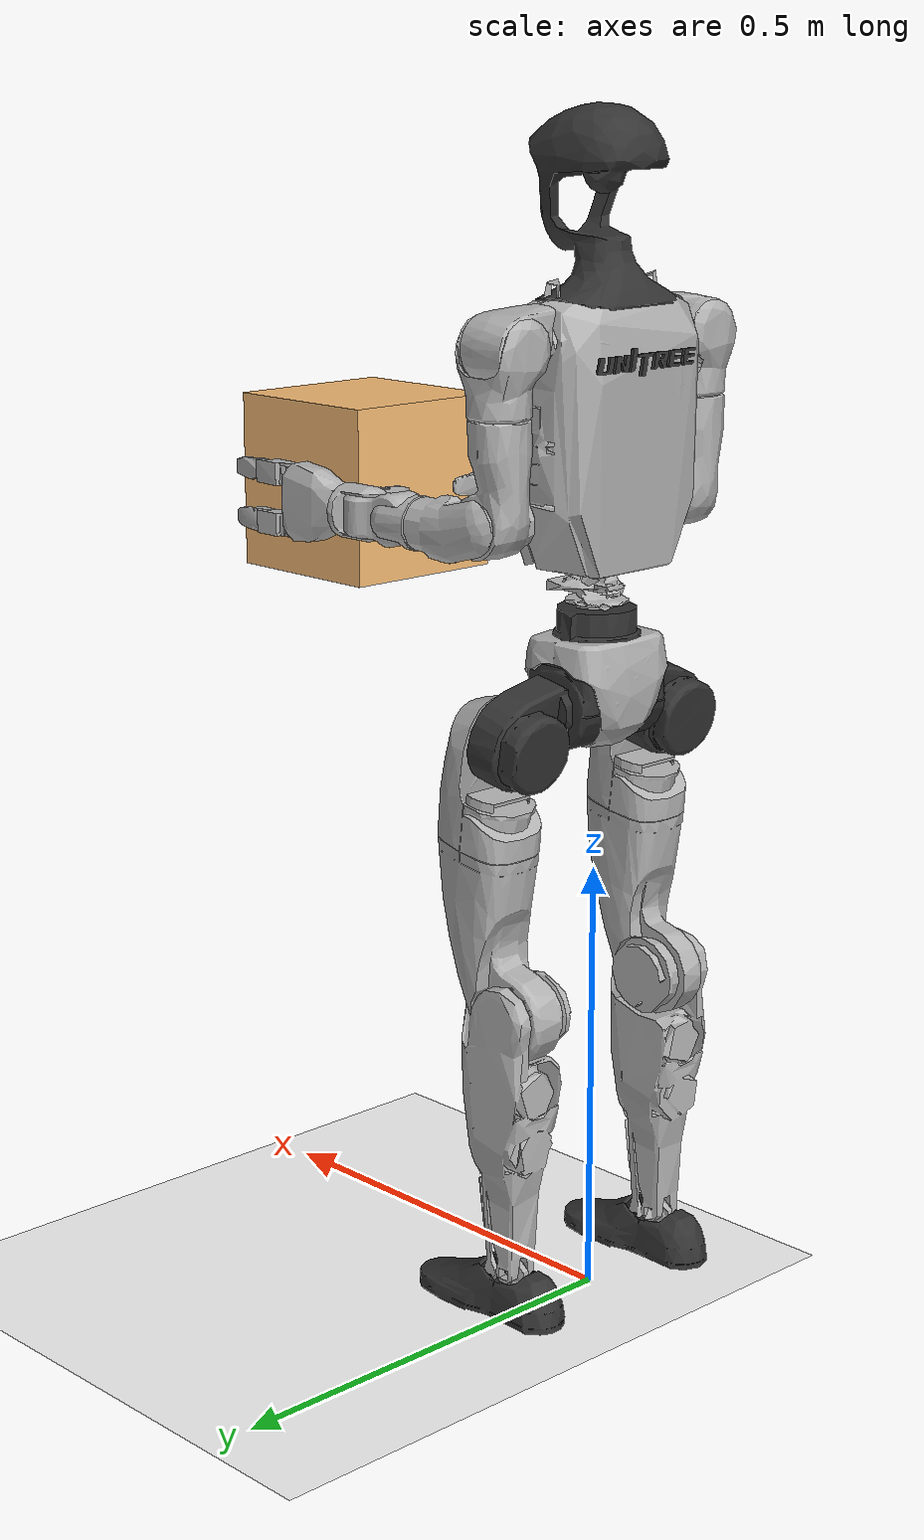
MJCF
<mujoco model="g1_29dof_with_hands_scene">
   <compiler angle="radian" meshdir="meshes"/>

  <option integrator="implicitfast"/>

  <default>
    <default class="g1">
      <site rgba="1 0 0 1" size="0.01" group="5"/>
      <joint armature="0.01" frictionloss="0.3"/>
      <position kp="500" dampratio="1" inheritrange="1"/>
      <default class="visual">
        <geom group="2" type="mesh" contype="0" conaffinity="0" density="0" material="metal"/>
      </default>
      <default class="collision">
        <geom group="3" type="mesh"/>
        <default class="foot">
          <geom type="sphere" size="0.005" priority="1" friction="0.6" condim="3"/>
        </default>
      </default>
    </default>
  </default>

  <asset>
    <material name="black" rgba="0.2 0.2 0.2 1"/>
    <material name="metal" rgba="0.7 0.7 0.7 1"/>

    <mesh file="pelvis.STL"/>
    <mesh file="pelvis_contour_link.STL"/>
    <mesh file="left_hip_pitch_link.STL"/>
    <mesh file="left_hip_roll_link.STL"/>
    <mesh file="left_hip_yaw_link.STL"/>
    <mesh file="left_knee_link.STL"/>
    <mesh file="left_ankle_pitch_link.STL"/>
    <mesh file="left_ankle_roll_link.STL"/>
    <mesh file="right_hip_pitch_link.STL"/>
    <mesh file="right_hip_roll_link.STL"/>
    <mesh file="right_hip_yaw_link.STL"/>
    <mesh file="right_knee_link.STL"/>
    <mesh file="right_ankle_pitch_link.STL"/>
    <mesh file="right_ankle_roll_link.STL"/>
    <mesh name="waist_yaw_link" file="waist_yaw_link_rev_1_0.STL"/>
    <mesh name="waist_roll_link" file="waist_roll_link_rev_1_0.STL"/>
    <mesh name="torso_link" file="torso_link_rev_1_0.STL"/>
    <mesh file="logo_link.STL"/>
    <mesh file="head_link.STL"/>
    <mesh file="left_shoulder_pitch_link.STL"/>
    <mesh file="left_shoulder_roll_link.STL"/>
    <mesh file="left_shoulder_yaw_link.STL"/>
    <mesh file="left_elbow_link.STL"/>
    <mesh file="left_wrist_roll_link.STL"/>
    <mesh name="left_wrist_pitch_link" file="left_wrist_pitch_link.STL"/>
    <mesh file="left_wrist_yaw_link.STL"/>
    <mesh file="left_hand_palm_link.STL"/>
    <mesh file="left_hand_thumb_0_link.STL"/>
    <mesh file="left_hand_thumb_1_link.STL"/>
    <mesh file="left_hand_thumb_2_link.STL"/>
    <mesh file="left_hand_middle_0_link.STL"/>
    <mesh file="left_hand_middle_1_link.STL"/>
    <mesh file="left_hand_index_0_link.STL"/>
    <mesh file="left_hand_index_1_link.STL"/>
    <mesh file="right_shoulder_pitch_link.STL"/>
    <mesh file="right_shoulder_roll_link.STL"/>
    <mesh file="right_shoulder_yaw_link.STL"/>
    <mesh file="right_elbow_link.STL"/>
    <mesh file="right_wrist_roll_link.STL"/>
    <mesh file="right_wrist_pitch_link.STL"/>
    <mesh file="right_wrist_yaw_link.STL"/>
    <mesh file="right_hand_palm_link.STL"/>
    <mesh file="right_hand_thumb_0_link.STL"/>
    <mesh file="right_hand_thumb_1_link.STL"/>
    <mesh file="right_hand_thumb_2_link.STL"/>
    <mesh file="right_hand_middle_0_link.STL"/>
    <mesh file="right_hand_middle_1_link.STL"/>
    <mesh file="right_hand_index_0_link.STL"/>
    <mesh file="right_hand_index_1_link.STL"/>
  </asset>

  <worldbody>
    <body name="pelvis" pos="0 0 0.793" childclass="g1">
      <inertial pos="0 0 -0.07605" quat="1 0 -0.000399148 0" mass="3.813" diaginertia="0.010549 0.0093089 0.0079184"/>
      <freejoint name="floating_base_joint"/>
      <geom class="visual" material="black" mesh="pelvis"/>
      <geom class="visual" mesh="pelvis_contour_link"/>
      <geom class="collision" mesh="pelvis_contour_link"/>
      <site name="imu_in_pelvis" size="0.01" pos="0.04525 0 -0.08339"/>
      <body name="left_hip_pitch_link" pos="0 0.064452 -0.1027">
        <inertial pos="0.002741 0.047791 -0.02606" quat="0.954862 0.293964 0.0302556 0.030122" mass="1.35"
          diaginertia="0.00181517 0.00153422 0.00116212"/>
        <joint name="left_hip_pitch_joint" axis="0 1 0" range="-2.5307 2.8798" actuatorfrcrange="-88 88"/>
        <geom class="visual" material="black" mesh="left_hip_pitch_link"/>
        <geom class="collision" mesh="left_hip_pitch_link"/>
        <body name="left_hip_roll_link" pos="0 0.052 -0.030465" quat="0.996179 0 -0.0873386 0">
          <inertial pos="0.029812 -0.001045 -0.087934" quat="0.977808 -1.97119e-05 0.205576 -0.0403793" mass="1.52"
            diaginertia="0.00254986 0.00241169 0.00148755"/>
          <joint name="left_hip_roll_joint" axis="1 0 0" range="-0.5236 2.9671" actuatorfrcrange="-139 139"/>
          <geom class="visual" mesh="left_hip_roll_link"/>
          <geom class="collision" mesh="left_hip_roll_link"/>
          <body name="left_hip_yaw_link" pos="0.025001 0 -0.12412">
            <inertial pos="-0.057709 -0.010981 -0.15078" quat="0.600598 0.15832 0.223482 0.751181" mass="1.702"
              diaginertia="0.00776166 0.00717575 0.00160139"/>
            <joint name="left_hip_yaw_joint" axis="0 0 1" range="-2.7576 2.7576" actuatorfrcrange="-88 88"/>
            <geom class="visual" mesh="left_hip_yaw_link"/>
            <geom class="collision" mesh="left_hip_yaw_link"/>
            <body name="left_knee_link" pos="-0.078273 0.0021489 -0.17734" quat="0.996179 0 0.0873386 0">
              <inertial pos="0.005457 0.003964 -0.12074" quat="0.923418 -0.0327699 0.0158246 0.382067" mass="1.932"
                diaginertia="0.0113804 0.0112778 0.00146458"/>
              <joint name="left_knee_joint" axis="0 1 0" range="-0.087267 2.8798" actuatorfrcrange="-139 139"/>
              <geom class="visual" mesh="left_knee_link"/>
              <geom class="collision" mesh="left_knee_link"/>
              <body name="left_ankle_pitch_link" pos="0 -9.4445e-05 -0.30001">
                <inertial pos="-0.007269 0 0.011137" quat="0.603053 0.369225 0.369225 0.603053" mass="0.074"
                  diaginertia="1.89e-05 1.40805e-05 6.9195e-06"/>
                <joint name="left_ankle_pitch_joint" axis="0 1 0" range="-0.87267 0.5236" actuatorfrcrange="-50 50"/>
                <geom class="visual" mesh="left_ankle_pitch_link"/>
                <geom class="collision" mesh="left_ankle_pitch_link"/>
                <body name="left_ankle_roll_link" pos="0 0 -0.017558">
                  <inertial pos="0.026505 0 -0.016425" quat="-0.000481092 0.728482 -0.000618967 0.685065" mass="0.608"
                    diaginertia="0.00167218 0.0016161 0.000217621"/>
                  <joint name="left_ankle_roll_joint" axis="1 0 0" range="-0.2618 0.2618" actuatorfrcrange="-50 50"/>
                  <geom class="visual" material="black" mesh="left_ankle_roll_link"/>
                  <geom class="foot" pos="-0.05 0.025 -0.03"/>
                  <geom class="foot" pos="-0.05 -0.025 -0.03"/>
                  <geom class="foot" pos="0.12 0.03 -0.03"/>
                  <geom class="foot" pos="0.12 -0.03 -0.03"/>
                  <site name="left_foot"/>
                  <body name="left_toe_link" pos="0.1 0 -0.02"/>
                </body>
              </body>
            </body>
          </body>
        </body>
      </body>
      <body name="right_hip_pitch_link" pos="0 -0.064452 -0.1027">
        <inertial pos="0.002741 -0.047791 -0.02606" quat="0.954862 -0.293964 0.0302556 -0.030122" mass="1.35"
          diaginertia="0.00181517 0.00153422 0.00116212"/>
        <joint name="right_hip_pitch_joint" axis="0 1 0" range="-2.5307 2.8798" actuatorfrcrange="-88 88"/>
        <geom class="visual" material="black" mesh="right_hip_pitch_link"/>
        <geom class="collision" mesh="right_hip_pitch_link"/>
        <body name="right_hip_roll_link" pos="0 -0.052 -0.030465" quat="0.996179 0 -0.0873386 0">
          <inertial pos="0.029812 0.001045 -0.087934" quat="0.977808 1.97119e-05 0.205576 0.0403793" mass="1.52"
            diaginertia="0.00254986 0.00241169 0.00148755"/>
          <joint name="right_hip_roll_joint" axis="1 0 0" range="-2.9671 0.5236" actuatorfrcrange="-139 139"/>
          <geom class="visual" mesh="right_hip_roll_link"/>
          <geom class="collision" mesh="right_hip_roll_link"/>
          <body name="right_hip_yaw_link" pos="0.025001 0 -0.12412">
            <inertial pos="-0.057709 0.010981 -0.15078" quat="0.751181 0.223482 0.15832 0.600598" mass="1.702"
              diaginertia="0.00776166 0.00717575 0.00160139"/>
            <joint name="right_hip_yaw_joint" axis="0 0 1" range="-2.7576 2.7576" actuatorfrcrange="-88 88"/>
            <geom class="visual" mesh="right_hip_yaw_link"/>
            <geom class="collision" mesh="right_hip_yaw_link"/>
            <body name="right_knee_link" pos="-0.078273 -0.0021489 -0.17734" quat="0.996179 0 0.0873386 0">
              <inertial pos="0.005457 -0.003964 -0.12074" quat="0.923439 0.0345276 0.0116333 -0.382012" mass="1.932"
                diaginertia="0.011374 0.0112843 0.00146452"/>
              <joint name="right_knee_joint" axis="0 1 0" range="-0.087267 2.8798" actuatorfrcrange="-139 139"/>
              <geom class="visual" mesh="right_knee_link"/>
              <geom class="collision" mesh="right_knee_link"/>
              <body name="right_ankle_pitch_link" pos="0 9.4445e-05 -0.30001">
                <inertial pos="-0.007269 0 0.011137" quat="0.603053 0.369225 0.369225 0.603053" mass="0.074"
                  diaginertia="1.89e-05 1.40805e-05 6.9195e-06"/>
                <joint name="right_ankle_pitch_joint" axis="0 1 0" range="-0.87267 0.5236" actuatorfrcrange="-50 50"/>
                <geom class="visual" mesh="right_ankle_pitch_link"/>
                <geom class="collision" mesh="right_ankle_pitch_link"/>
                <body name="right_ankle_roll_link" pos="0 0 -0.017558">
                  <inertial pos="0.026505 0 -0.016425" quat="0.000481092 0.728482 0.000618967 0.685065" mass="0.608"
                    diaginertia="0.00167218 0.0016161 0.000217621"/>
                  <joint name="right_ankle_roll_joint" axis="1 0 0" range="-0.2618 0.2618" actuatorfrcrange="-50 50"/>
                  <geom class="visual" material="black" mesh="right_ankle_roll_link"/>
                  <geom class="foot" pos="-0.05 0.025 -0.03"/>
                  <geom class="foot" pos="-0.05 -0.025 -0.03"/>
                  <geom class="foot" pos="0.12 0.03 -0.03"/>
                  <geom class="foot" pos="0.12 -0.03 -0.03"/>
                  <site name="right_foot"/>
                  <body name="right_toe_link" pos="0.1 0 -0.02"/>
                </body>
              </body>
            </body>
          </body>
        </body>
      </body>
      <body name="waist_yaw_link">
        <inertial pos="0.003494 0.000233 0.018034" quat="0.289697 0.591001 -0.337795 0.672821" mass="0.214"
          diaginertia="0.000163531 0.000107714 0.000102205"/>
        <joint name="waist_yaw_joint" axis="0 0 1" range="-2.618 2.618" actuatorfrcrange="-88 88"/>
        <geom class="visual" mesh="waist_yaw_link"/>
        <body name="waist_roll_link" pos="-0.0039635 0 0.044">
          <inertial pos="0 2.3e-05 0" quat="0.5 0.5 -0.5 0.5" mass="0.086" diaginertia="8.245e-06 7.079e-06 6.339e-06"/>
          <joint name="waist_roll_joint" axis="1 0 0" range="-0.52 0.52" actuatorfrcrange="-50 50"/>
          <geom class="visual" mesh="waist_roll_link"/>
          <body name="torso_link">
            <inertial pos="0.00203158 0.000339683 0.184568" quat="0.999803 -6.03319e-05 0.0198256 0.00131986"
              mass="7.818" diaginertia="0.121847 0.109825 0.0273735"/>
            <joint name="waist_pitch_joint" axis="0 1 0" range="-0.52 0.52" actuatorfrcrange="-50 50"/>
            <geom class="visual" mesh="torso_link"/>
            <geom class="collision" mesh="torso_link"/>
            <geom pos="0.0039635 0 -0.044" quat="1 0 0 0" class="visual" material="black" mesh="logo_link"/>
            <geom pos="0.0039635 0 -0.044" class="visual" material="black" mesh="head_link"/>
            <geom pos="0.0039635 0 -0.044" class="collision" mesh="head_link"/>
            <site name="imu_in_torso" size="0.01" pos="-0.03959 -0.00224 0.14792"/>
            <body name="left_shoulder_pitch_link" pos="0.0039563 0.10022 0.24778"
              quat="0.990264 0.139201 1.38722e-05 -9.86868e-05">
              <inertial pos="0 0.035892 -0.011628" quat="0.654152 0.0130458 -0.326267 0.68225" mass="0.718"
                diaginertia="0.000465864 0.000432842 0.000406394"/>
              <joint name="left_shoulder_pitch_joint" axis="0 1 0" range="-3.0892 2.6704" actuatorfrcrange="-25 25"/>
              <geom class="visual" mesh="left_shoulder_pitch_link"/>
              <geom size="0.03 0.025" pos="0 0.04 -0.01" quat="0.707107 0 0.707107 0" type="cylinder" class="collision"/>
              <body name="left_shoulder_roll_link" pos="0 0.038 -0.013831" quat="0.990268 -0.139172 0 0">
                <inertial pos="-0.000227 0.00727 -0.063243" quat="0.701256 -0.0196223 -0.00710317 0.712604" mass="0.643"
                  diaginertia="0.000691311 0.000618011 0.000388977"/>
                <joint name="left_shoulder_roll_joint" axis="1 0 0" range="-1.5882 2.2515" actuatorfrcrange="-25 25"/>
                <geom class="visual" mesh="left_shoulder_roll_link"/>
                <geom size="0.03 0.015" pos="-0.004 0.006 -0.053" type="cylinder" class="collision"/>
                <body name="left_shoulder_yaw_link" pos="0 0.00624 -0.1032">
                  <inertial pos="0.010773 -0.002949 -0.072009" quat="0.716879 -0.0964829 -0.0679942 0.687134"
                    mass="0.734" diaginertia="0.00106187 0.00103217 0.000400661"/>
                  <joint name="left_shoulder_yaw_joint" axis="0 0 1" range="-2.618 2.618" actuatorfrcrange="-25 25"/>
                  <geom class="visual" mesh="left_shoulder_yaw_link"/>
                  <geom class="collision" mesh="left_shoulder_yaw_link"/>
                  <body name="left_elbow_link" pos="0.015783 0 -0.080518">
                    <inertial pos="0.064956 0.004454 -0.010062" quat="0.541765 0.636132 0.388821 0.388129" mass="0.6"
                      diaginertia="0.000443035 0.000421612 0.000259353"/>
                    <joint name="left_elbow_joint" axis="0 1 0" range="-1.0472 2.0944" actuatorfrcrange="-25 25"/>
                    <geom class="visual" mesh="left_elbow_link"/>
                    <geom class="collision" mesh="left_elbow_link"/>
                    <body name="left_wrist_roll_link" pos="0.1 0.00188791 -0.01">
                      <inertial pos="0.0171394 0.000537591 4.8864e-07" quat="0.575338 0.411667 -0.574906 0.411094"
                        mass="0.085445" diaginertia="5.48211e-05 4.96646e-05 3.57798e-05"/>
                      <joint name="left_wrist_roll_joint" axis="1 0 0" range="-1.97222 1.97222"
                        actuatorfrcrange="-25 25"/>
                      <geom class="visual" mesh="left_wrist_roll_link"/>
                      <geom class="collision" mesh="left_wrist_roll_link"/>
                      <body name="left_wrist_pitch_link" pos="0.038 0 0">
                        <inertial pos="0.0229999 -0.00111685 -0.00111658" quat="0.249998 0.661363 0.293036 0.643608"
                          mass="0.48405" diaginertia="0.000430353 0.000429873 0.000164648"/>
                        <joint name="left_wrist_pitch_joint" axis="0 1 0" range="-1.61443 1.61443"
                          actuatorfrcrange="-5 5"/>
                        <geom class="visual" mesh="left_wrist_pitch_link"/>
                        <geom class="collision" mesh="left_wrist_pitch_link"/>
                        <body name="left_wrist_yaw_link" pos="0.046 0 0">
                          <inertial pos="0.0885506 0.00212216 -0.000374562" quat="0.487149 0.493844 0.513241 0.505358"
                            mass="0.457415" diaginertia="0.00105989 0.000895419 0.000323842"/>
                          <joint name="left_wrist_yaw_joint" axis="0 0 1" range="-1.61443 1.61443"
                            actuatorfrcrange="-5 5"/>
                          <geom class="visual" mesh="left_wrist_yaw_link"/>
                          <geom class="collision" mesh="left_wrist_yaw_link"/>
                          <geom pos="0.0415 0.003 0" quat="1 0 0 0" class="visual" mesh="left_hand_palm_link"/>
                          <geom pos="0.0415 0.003 0" quat="1 0 0 0" class="collision" mesh="left_hand_palm_link"/>
                          <body name="left_hand_thumb_0_link" pos="0.067 0.003 0">
                            <inertial pos="-0.000884246 -0.00863407 0.000944293"
                              quat="0.462991 0.643965 -0.460173 0.398986" mass="0.0862366"
                              diaginertia="1.6546e-05 1.60058e-05 1.43741e-05"/>
                            <joint name="left_hand_thumb_0_joint" axis="0 1 0" range="-1.0472 1.0472"
                              actuatorfrcrange="-2.45 2.45"/>
                            <geom class="visual" mesh="left_hand_thumb_0_link"/>
                            <geom class="collision" mesh="left_hand_thumb_0_link"/>
                            <body name="left_hand_thumb_1_link" pos="-0.0025 -0.0193 0">
                              <inertial pos="-0.000827888 -0.0354744 -0.0003809"
                                quat="0.685598 0.705471 -0.15207 0.0956069" mass="0.0588507"
                                diaginertia="1.28514e-05 1.22902e-05 5.9666e-06"/>
                              <joint name="left_hand_thumb_1_joint" axis="0 0 1" range="-0.724312 1.0472"
                                actuatorfrcrange="-1.4 1.4"/>
                              <geom class="visual" mesh="left_hand_thumb_1_link"/>
                              <geom size="0.01 0.015 0.01" pos="-0.001 -0.032 0" type="box" class="collision"/>
                              <body name="left_hand_thumb_2_link" pos="0 -0.0458 0">
                                <inertial pos="-0.00171735 -0.0262819 0.000107789"
                                  quat="0.703174 0.710977 -0.00017564 -0.00766553" mass="0.0203063"
                                  diaginertia="4.61314e-06 3.86645e-06 1.53495e-06"/>
                                <joint name="left_hand_thumb_2_joint" axis="0 0 1" range="0 1.74533"
                                  actuatorfrcrange="-1.4 1.4"/>
                                <geom class="visual" mesh="left_hand_thumb_2_link"/>
                                <geom class="collision" mesh="left_hand_thumb_2_link"/>

                                <body name="left_hand_thumb_finger_tip" pos="0.0 -0.048 0.0"></body>

                              </body>
                            </body>
                          </body>
                          <body name="left_hand_middle_0_link" pos="0.1192 0.0046 -0.0285">
                            <inertial pos="0.0354744 0.000827888 0.0003809" quat="0.391313 0.552395 0.417187 0.606373"
                              mass="0.0588507" diaginertia="1.28514e-05 1.22902e-05 5.9666e-06"/>
                            <joint name="left_hand_middle_0_joint" axis="0 0 1" range="-1.5708 0"
                              actuatorfrcrange="-1.4 1.4"/>
                            <geom class="visual" mesh="left_hand_middle_0_link"/>
                            <geom class="collision" mesh="left_hand_middle_0_link"/>
                            <body name="left_hand_middle_1_link" pos="0.0458 0 0">
                              <inertial pos="0.0262819 0.00171735 -0.000107789"
                                quat="0.502612 0.491799 0.502639 0.502861" mass="0.0203063"
                                diaginertia="4.61314e-06 3.86645e-06 1.53495e-06"/>
                              <joint name="left_hand_middle_1_joint" axis="0 0 1" range="-1.74533 0"
                                actuatorfrcrange="-1.4 1.4"/>
                              <geom class="visual" mesh="left_hand_middle_1_link"/>
                              <geom class="collision" mesh="left_hand_middle_1_link"/>

                                <body name="left_hand_middle_finger_tip" pos="0.048 0.0 0.0"></body>

                            </body>
                          </body>
                          <body name="left_hand_index_0_link" pos="0.1192 0.0046 0.0285">
                            <inertial pos="0.0354744 0.000827888 0.0003809" quat="0.391313 0.552395 0.417187 0.606373"
                              mass="0.0588507" diaginertia="1.28514e-05 1.22902e-05 5.9666e-06"/>
                            <joint name="left_hand_index_0_joint" axis="0 0 1" range="-1.5708 0"
                              actuatorfrcrange="-1.4 1.4"/>
                            <geom class="visual" mesh="left_hand_index_0_link"/>
                            <geom class="collision" mesh="left_hand_index_0_link"/>
                            <body name="left_hand_index_1_link" pos="0.0458 0 0">
                              <inertial pos="0.0262819 0.00171735 -0.000107789"
                                quat="0.502612 0.491799 0.502639 0.502861" mass="0.0203063"
                                diaginertia="4.61314e-06 3.86645e-06 1.53495e-06"/>
                              <joint name="left_hand_index_1_joint" axis="0 0 1" range="-1.74533 0"
                                actuatorfrcrange="-1.4 1.4"/>
                              <geom class="visual" mesh="left_hand_index_1_link"/>
                              <geom class="collision" mesh="left_hand_index_1_link"/>

                                <body name="left_hand_index_finger_tip" pos="0.048 0.0 0.0"></body>

                            </body>
                          </body>
                          <!-- Box centered between both hands -->
                          <body name="box" pos="0.175 -0.15 0.0">
                            <inertial pos="0 0 0" mass="1.0" diaginertia="0.0067 0.0067 0.0067"/>
                            <geom name="box_geom"
                                  type="box"
                                  size="0.1 0.1 0.1"
                                  rgba="0.969 0.737 0.455 1"/>
                            <site name="box_center" pos="0 0 0" size="0.01"/>
                          </body>
                        </body>
                      </body>
                    </body>
                  </body>
                </body>
              </body>
            </body>
            <body name="right_shoulder_pitch_link" pos="0.0039563 -0.10021 0.24778"
              quat="0.990264 -0.139201 1.38722e-05 9.86868e-05">
              <inertial pos="0 -0.035892 -0.011628" quat="0.68225 -0.326267 0.0130458 0.654152" mass="0.718"
                diaginertia="0.000465864 0.000432842 0.000406394"/>
              <joint name="right_shoulder_pitch_joint" axis="0 1 0" range="-3.0892 2.6704" actuatorfrcrange="-25 25"/>
              <geom class="visual" mesh="right_shoulder_pitch_link"/>
              <geom size="0.03 0.025" pos="0 -0.04 -0.01" quat="0.707107 0 0.707107 0" type="cylinder" class="collision"/>
              <body name="right_shoulder_roll_link" pos="0 -0.038 -0.013831" quat="0.990268 0.139172 0 0">
                <inertial pos="-0.000227 -0.00727 -0.063243" quat="0.712604 -0.00710317 -0.0196223 0.701256"
                  mass="0.643" diaginertia="0.000691311 0.000618011 0.000388977"/>
                <joint name="right_shoulder_roll_joint" axis="1 0 0" range="-2.2515 1.5882" actuatorfrcrange="-25 25"/>
                <geom class="visual" mesh="right_shoulder_roll_link"/>
                <geom size="0.03 0.015" pos="-0.004 -0.006 -0.053" type="cylinder" class="collision"/>
                <body name="right_shoulder_yaw_link" pos="0 -0.00624 -0.1032">
                  <inertial pos="0.010773 0.002949 -0.072009" quat="0.687134 -0.0679942 -0.0964829 0.716879"
                    mass="0.734" diaginertia="0.00106187 0.00103217 0.000400661"/>
                  <joint name="right_shoulder_yaw_joint" axis="0 0 1" range="-2.618 2.618" actuatorfrcrange="-25 25"/>
                  <geom class="visual" mesh="right_shoulder_yaw_link"/>
                  <geom class="collision" mesh="right_shoulder_yaw_link"/>
                  <body name="right_elbow_link" pos="0.015783 0 -0.080518">
                    <inertial pos="0.064956 -0.004454 -0.010062" quat="0.388129 0.388821 0.636132 0.541765" mass="0.6"
                      diaginertia="0.000443035 0.000421612 0.000259353"/>
                    <joint name="right_elbow_joint" axis="0 1 0" range="-1.0472 2.0944" actuatorfrcrange="-25 25"/>
                    <geom class="visual" mesh="right_elbow_link"/>
                    <geom class="collision" mesh="right_elbow_link"/>
                    <body name="right_wrist_roll_link" pos="0.1 -0.00188791 -0.01">
                      <inertial pos="0.0171394 -0.000537591 4.8864e-07" quat="0.411667 0.575338 -0.411094 0.574906"
                        mass="0.085445" diaginertia="5.48211e-05 4.96646e-05 3.57798e-05"/>
                      <joint name="right_wrist_roll_joint" axis="1 0 0" range="-1.97222 1.97222"
                        actuatorfrcrange="-25 25"/>
                      <geom class="visual" mesh="right_wrist_roll_link"/>
                      <geom class="collision" mesh="right_wrist_roll_link"/>
                      <body name="right_wrist_pitch_link" pos="0.038 0 0">
                        <inertial pos="0.0229999 0.00111685 -0.00111658" quat="0.643608 0.293036 0.661363 0.249998"
                          mass="0.48405" diaginertia="0.000430353 0.000429873 0.000164648"/>
                        <joint name="right_wrist_pitch_joint" axis="0 1 0" range="-1.61443 1.61443"
                          actuatorfrcrange="-5 5"/>
                        <geom class="visual" mesh="right_wrist_pitch_link"/>
                        <geom class="collision" mesh="right_wrist_pitch_link"/>
                        <body name="right_wrist_yaw_link" pos="0.046 0 0">
                          <inertial pos="0.0885506 -0.00212216 -0.000374562" quat="0.505358 0.513241 0.493844 0.487149"
                            mass="0.457415" diaginertia="0.00105989 0.000895419 0.000323842"/>
                          <joint name="right_wrist_yaw_joint" axis="0 0 1" range="-1.61443 1.61443"
                            actuatorfrcrange="-5 5"/>
                          <geom class="visual" mesh="right_wrist_yaw_link"/>
                          <geom class="collision" mesh="right_wrist_yaw_link"/>
                          <geom pos="0.0415 -0.003 0" quat="1 0 0 0" class="visual" mesh="right_hand_palm_link"/>
                          <geom pos="0.0415 -0.003 0" quat="1 0 0 0" class="collision" mesh="right_hand_palm_link"/>
                          <body name="right_hand_thumb_0_link" pos="0.067 -0.003 0">
                            <inertial pos="-0.000884246 0.00863407 0.000944293"
                              quat="0.643965 0.462991 -0.398986 0.460173" mass="0.0862366"
                              diaginertia="1.6546e-05 1.60058e-05 1.43741e-05"/>
                            <joint name="right_hand_thumb_0_joint" axis="0 1 0" range="-1.0472 1.0472"
                              actuatorfrcrange="-2.45 2.45"/>
                            <geom class="visual" mesh="right_hand_thumb_0_link"/>
                            <geom class="collision" mesh="right_hand_thumb_0_link"/>
                            <body name="right_hand_thumb_1_link" pos="-0.0025 0.0193 0">
                              <inertial pos="-0.000827888 0.0354744 -0.0003809"
                                quat="0.705471 0.685598 -0.0956069 0.15207" mass="0.0588507"
                                diaginertia="1.28514e-05 1.22902e-05 5.9666e-06"/>
                              <joint name="right_hand_thumb_1_joint" axis="0 0 1" range="-1.0472 0.724312"
                                actuatorfrcrange="-1.4 1.4"/>
                              <geom class="visual" mesh="right_hand_thumb_1_link"/>
                              <geom size="0.01 0.015 0.01" pos="-0.001 0.032 0" type="box" class="collision"/>
                              <body name="right_hand_thumb_2_link" pos="0 0.0458 0">
                                <inertial pos="-0.00171735 0.0262819 0.000107789"
                                  quat="0.710977 0.703174 0.00766553 0.00017564" mass="0.0203063"
                                  diaginertia="4.61314e-06 3.86645e-06 1.53495e-06"/>
                                <joint name="right_hand_thumb_2_joint" axis="0 0 1" range="-1.74533 0"
                                  actuatorfrcrange="-1.4 1.4"/>
                                <geom class="visual" mesh="right_hand_thumb_2_link"/>
                                <geom class="collision" mesh="right_hand_thumb_2_link"/>

                                <body name="right_hand_thumb_finger_tip" pos="0.0 0.048 0.0"></body>

                              </body>
                            </body>
                          </body>
                          <body name="right_hand_middle_0_link" pos="0.1192 -0.0046 -0.0285">
                            <inertial pos="0.0354744 -0.000827888 0.0003809" quat="0.606373 0.417187 0.552395 0.391313"
                              mass="0.0588507" diaginertia="1.28514e-05 1.22902e-05 5.9666e-06"/>
                            <joint name="right_hand_middle_0_joint" axis="0 0 1" range="0 1.5708"
                              actuatorfrcrange="-1.4 1.4"/>
                            <geom class="visual" mesh="right_hand_middle_0_link"/>
                            <geom class="collision" mesh="right_hand_middle_0_link"/>
                            <body name="right_hand_middle_1_link" pos="0.0458 0 0">
                              <inertial pos="0.0262819 -0.00171735 -0.000107789"
                                quat="0.502861 0.502639 0.491799 0.502612" mass="0.0203063"
                                diaginertia="4.61314e-06 3.86645e-06 1.53495e-06"/>
                              <joint name="right_hand_middle_1_joint" axis="0 0 1" range="0 1.74533"
                                actuatorfrcrange="-1.4 1.4"/>
                              <geom class="visual" mesh="right_hand_middle_1_link"/>
                              <geom class="collision" mesh="right_hand_middle_1_link"/>

                                <body name="right_hand_middle_finger_tip" pos="0.048 0.0 0.0"></body>

                            </body>
                          </body>
                          <body name="right_hand_index_0_link" pos="0.1192 -0.0046 0.0285">
                            <inertial pos="0.0354744 -0.000827888 0.0003809" quat="0.606373 0.417187 0.552395 0.391313"
                              mass="0.0588507" diaginertia="1.28514e-05 1.22902e-05 5.9666e-06"/>
                            <joint name="right_hand_index_0_joint" axis="0 0 1" range="0 1.5708"
                              actuatorfrcrange="-1.4 1.4"/>
                            <geom class="visual" mesh="right_hand_index_0_link"/>
                            <geom class="collision" mesh="right_hand_index_0_link"/>
                            <body name="right_hand_index_1_link" pos="0.0458 0 0">
                              <inertial pos="0.0262819 -0.00171735 -0.000107789"
                                quat="0.502861 0.502639 0.491799 0.502612" mass="0.0203063"
                                diaginertia="4.61314e-06 3.86645e-06 1.53495e-06"/>
                              <joint name="right_hand_index_1_joint" axis="0 0 1" range="0 1.74533"
                                actuatorfrcrange="-1.4 1.4"/>
                              <geom class="visual" mesh="right_hand_index_1_link"/>
                              <geom class="collision" mesh="right_hand_index_1_link"/>

                                <body name="right_hand_index_finger_tip" pos="0.048 0.0 0.0"></body>

                            </body>
                          </body>
                        </body>
                      </body>
                    </body>
                  </body>
                </body>
              </body>
            </body>
          </body>
        </body>
      </body>
    </body>
  </worldbody>

  <equality>
    <!-- Lock ALL leg joints -->

     <!-- Lock waist -->
    <joint joint1="waist_yaw_joint" polycoef="0 1 0 0 0"/>
    <joint joint1="waist_roll_joint" polycoef="0 1 0 0 0"/>
    <joint joint1="waist_pitch_joint" polycoef="0 1 0 0 0"/>

    <!-- Lock left arm -->
    <joint joint1="left_shoulder_pitch_joint" polycoef="0 1 0 0 0"/>
    <joint joint1="left_shoulder_roll_joint" polycoef="0 1 0 0 0"/>
    <joint joint1="left_shoulder_yaw_joint" polycoef="0 1 0 0 0"/>
    <joint joint1="left_elbow_joint" polycoef="0 1 0 0 0"/>
    <joint joint1="left_wrist_roll_joint" polycoef="0 1 0 0 0"/>
    <joint joint1="left_wrist_pitch_joint" polycoef="0 1 0 0 0"/>
    <joint joint1="left_wrist_yaw_joint" polycoef="0 1 0 0 0"/>

    <!-- Lock left hand -->
    <joint joint1="left_hand_thumb_0_joint" polycoef="0 1 0 0 0"/>
    <joint joint1="left_hand_thumb_1_joint" polycoef="0 1 0 0 0"/>
    <joint joint1="left_hand_thumb_2_joint" polycoef="0 1 0 0 0"/>
    <joint joint1="left_hand_middle_0_joint" polycoef="0 1 0 0 0"/>
    <joint joint1="left_hand_middle_1_joint" polycoef="0 1 0 0 0"/>
    <joint joint1="left_hand_index_0_joint" polycoef="0 1 0 0 0"/>
    <joint joint1="left_hand_index_1_joint" polycoef="0 1 0 0 0"/>

    <!-- Lock right arm -->
    <joint joint1="right_shoulder_pitch_joint" polycoef="0 1 0 0 0"/>
    <joint joint1="right_shoulder_roll_joint" polycoef="0 1 0 0 0"/>
    <joint joint1="right_shoulder_yaw_joint" polycoef="0 1 0 0 0"/>
    <joint joint1="right_elbow_joint" polycoef="0 1 0 0 0"/>
    <joint joint1="right_wrist_roll_joint" polycoef="0 1 0 0 0"/>
    <joint joint1="right_wrist_pitch_joint" polycoef="0 1 0 0 0"/>
    <joint joint1="right_wrist_yaw_joint" polycoef="0 1 0 0 0"/>

    <!-- Lock right hand -->
    <joint joint1="right_hand_thumb_0_joint" polycoef="0 1 0 0 0"/>
    <joint joint1="right_hand_thumb_1_joint" polycoef="0 1 0 0 0"/>
    <joint joint1="right_hand_thumb_2_joint" polycoef="0 1 0 0 0"/>
    <joint joint1="right_hand_middle_0_joint" polycoef="0 1 0 0 0"/>
    <joint joint1="right_hand_middle_1_joint" polycoef="0 1 0 0 0"/>
    <joint joint1="right_hand_index_0_joint" polycoef="0 1 0 0 0"/>
    <joint joint1="right_hand_index_1_joint" polycoef="0 1 0 0 0"/>
  </equality>

  <actuator>
    <!-- ALL joints use motor (torque) control -->

    <!-- Legs (0-11) -->
    <motor class="g1" name="left_hip_pitch_joint" joint="left_hip_pitch_joint" gear="1" ctrllimited="true" ctrlrange="-88 88"/>
    <motor class="g1" name="left_hip_roll_joint" joint="left_hip_roll_joint" gear="1" ctrllimited="true" ctrlrange="-139 139"/>
    <motor class="g1" name="left_hip_yaw_joint" joint="left_hip_yaw_joint" gear="1" ctrllimited="true" ctrlrange="-88 88"/>
    <motor class="g1" name="left_knee_joint" joint="left_knee_joint" gear="1" ctrllimited="true" ctrlrange="-139 139"/>
    <motor class="g1" name="left_ankle_pitch_joint" joint="left_ankle_pitch_joint" gear="1" ctrllimited="true" ctrlrange="-50 50"/>
    <motor class="g1" name="left_ankle_roll_joint" joint="left_ankle_roll_joint" gear="1" ctrllimited="true" ctrlrange="-50 50"/>

    <motor class="g1" name="right_hip_pitch_joint" joint="right_hip_pitch_joint" gear="1" ctrllimited="true" ctrlrange="-88 88"/>
    <motor class="g1" name="right_hip_roll_joint" joint="right_hip_roll_joint" gear="1" ctrllimited="true" ctrlrange="-139 139"/>
    <motor class="g1" name="right_hip_yaw_joint" joint="right_hip_yaw_joint" gear="1" ctrllimited="true" ctrlrange="-88 88"/>
    <motor class="g1" name="right_knee_joint" joint="right_knee_joint" gear="1" ctrllimited="true" ctrlrange="-139 139"/>
    <motor class="g1" name="right_ankle_pitch_joint" joint="right_ankle_pitch_joint" gear="1" ctrllimited="true" ctrlrange="-50 50"/>
    <motor class="g1" name="right_ankle_roll_joint" joint="right_ankle_roll_joint" gear="1" ctrllimited="true" ctrlrange="-50 50"/>

    <!-- Waist (12-14) -->
    <motor class="g1" name="waist_yaw_joint" joint="waist_yaw_joint" gear="1" ctrllimited="true" ctrlrange="-88 88"/>
    <motor class="g1" name="waist_roll_joint" joint="waist_roll_joint" gear="1" ctrllimited="true" ctrlrange="-50 50"/>
    <motor class="g1" name="waist_pitch_joint" joint="waist_pitch_joint" gear="1" ctrllimited="true" ctrlrange="-50 50"/>

    <!-- Arms (15-28) -->
    <motor class="g1" name="left_shoulder_pitch_joint" joint="left_shoulder_pitch_joint" gear="1" ctrllimited="true" ctrlrange="-25 25"/>
    <motor class="g1" name="left_shoulder_roll_joint" joint="left_shoulder_roll_joint" gear="1" ctrllimited="true" ctrlrange="-25 25"/>
    <motor class="g1" name="left_shoulder_yaw_joint" joint="left_shoulder_yaw_joint" gear="1" ctrllimited="true" ctrlrange="-25 25"/>
    <motor class="g1" name="left_elbow_joint" joint="left_elbow_joint" gear="1" ctrllimited="true" ctrlrange="-25 25"/>
    <motor class="g1" name="left_wrist_roll_joint" joint="left_wrist_roll_joint" gear="1" ctrllimited="true" ctrlrange="-25 25"/>
    <motor class="g1" name="left_wrist_pitch_joint" joint="left_wrist_pitch_joint" gear="1" ctrllimited="true" ctrlrange="-5 5"/>
    <motor class="g1" name="left_wrist_yaw_joint" joint="left_wrist_yaw_joint" gear="1" ctrllimited="true" ctrlrange="-5 5"/>
    <motor class="g1" name="left_hand_thumb_0_joint" joint="left_hand_thumb_0_joint" gear="1" ctrllimited="true" ctrlrange="-2.45 2.45"/>
    <motor class="g1" name="left_hand_thumb_1_joint" joint="left_hand_thumb_1_joint" gear="1" ctrllimited="true" ctrlrange="-1.4 1.4"/>
    <motor class="g1" name="left_hand_thumb_2_joint" joint="left_hand_thumb_2_joint" gear="1" ctrllimited="true" ctrlrange="-1.4 1.4"/>
    <motor class="g1" name="left_hand_middle_0_joint" joint="left_hand_middle_0_joint" gear="1" ctrllimited="true" ctrlrange="-1.4 1.4"/>
    <motor class="g1" name="left_hand_middle_1_joint" joint="left_hand_middle_1_joint" gear="1" ctrllimited="true" ctrlrange="-1.4 1.4"/>
    <motor class="g1" name="left_hand_index_0_joint" joint="left_hand_index_0_joint" gear="1" ctrllimited="true" ctrlrange="-1.4 1.4"/>
    <motor class="g1" name="left_hand_index_1_joint" joint="left_hand_index_1_joint" gear="1" ctrllimited="true" ctrlrange="-1.4 1.4"/>

    <motor class="g1" name="right_shoulder_pitch_joint" joint="right_shoulder_pitch_joint" gear="1" ctrllimited="true" ctrlrange="-25 25"/>
    <motor class="g1" name="right_shoulder_roll_joint" joint="right_shoulder_roll_joint" gear="1" ctrllimited="true" ctrlrange="-25 25"/>
    <motor class="g1" name="right_shoulder_yaw_joint" joint="right_shoulder_yaw_joint" gear="1" ctrllimited="true" ctrlrange="-25 25"/>
    <motor class="g1" name="right_elbow_joint" joint="right_elbow_joint" gear="1" ctrllimited="true" ctrlrange="-25 25"/>
    <motor class="g1" name="right_wrist_roll_joint" joint="right_wrist_roll_joint" gear="1" ctrllimited="true" ctrlrange="-25 25"/>
    <motor class="g1" name="right_wrist_pitch_joint" joint="right_wrist_pitch_joint" gear="1" ctrllimited="true" ctrlrange="-5 5"/>
    <motor class="g1" name="right_wrist_yaw_joint" joint="right_wrist_yaw_joint" gear="1" ctrllimited="true" ctrlrange="-5 5"/>
    <motor class="g1" name="right_hand_thumb_0_joint" joint="right_hand_thumb_0_joint" gear="1" ctrllimited="true" ctrlrange="-2.45 2.45"/>
    <motor class="g1" name="right_hand_thumb_1_joint" joint="right_hand_thumb_1_joint" gear="1" ctrllimited="true" ctrlrange="-1.4 1.4"/>
    <motor class="g1" name="right_hand_thumb_2_joint" joint="right_hand_thumb_2_joint" gear="1" ctrllimited="true" ctrlrange="-1.4 1.4"/>
    <motor class="g1" name="right_hand_index_0_joint" joint="right_hand_index_0_joint" gear="1" ctrllimited="true" ctrlrange="-1.4 1.4"/>
    <motor class="g1" name="right_hand_index_1_joint" joint="right_hand_index_1_joint" gear="1" ctrllimited="true" ctrlrange="-1.4 1.4"/>
    <motor class="g1" name="right_hand_middle_0_joint" joint="right_hand_middle_0_joint" gear="1" ctrllimited="true" ctrlrange="-1.4 1.4"/>
    <motor class="g1" name="right_hand_middle_1_joint" joint="right_hand_middle_1_joint" gear="1" ctrllimited="true" ctrlrange="-1.4 1.4"/>
  </actuator>

  <sensor>
    <gyro name="imu-torso-angular-velocity" site="imu_in_torso" noise="5e-4" cutoff="34.9"/>
    <accelerometer name="imu-torso-linear-acceleration" site="imu_in_torso" noise="1e-2" cutoff="157"/>
    <gyro name="imu-pelvis-angular-velocity" site="imu_in_pelvis" noise="5e-4" cutoff="34.9"/>
    <accelerometer name="imu-pelvis-linear-acceleration" site="imu_in_pelvis" noise="1e-2" cutoff="157"/>
  </sensor>

  <keyframe>
    <key name="stand"
      qpos="
      0 0 0.70
      1 0 0 0
      0 0 0 0 0 0
      0 0 0 0 0 0
      0 0 0
      0.2 0.2 0 1.28 0 0 0
      0 1.05 0 0 0 0 0
      0.2 -0.2 0 1.28 0 0 0
      0 -1.05 0 0 0 0 0
      "

      qvel="
      0 0 0 0 0 0
      0 0 0 0 0 0
      0 0 0 0 0 0
      0 0 0 0 0 0
      0 0 0 0 0 0 0 0 0 0 0 0 0
      0 0 0 0 0 0 0 0 0 0 0 0
      "
      ctrl="
      0 0 0 0 0 0
      0 0 0 0 0 0
      0 0 0
      0.2 0.2 0 1.28 0 0 0
      0 1.05 0 0 0 0 0
      0.2 -0.2 0 1.28 0 0 0
      0 -1.05 0 0 0 0 0
      "/>
  </keyframe>

<!-- setup scene -->
  <statistic center="1.0 0.7 1.0" extent="0.8"/>
  <visual>
    <headlight diffuse="0.6 0.6 0.6" ambient="0.1 0.1 0.1" specular="0.9 0.9 0.9"/>
    <rgba haze="0.15 0.25 0.35 1"/>
    <global azimuth="-140" elevation="-20" offwidth="2080" offheight="1170"/>
  </visual>
  <asset>
     <texture type="skybox" builtin="gradient" rgb1="1 1 1" rgb2="1 1 1" width="800" height="800"/>
    <texture type="2d" name="groundplane" builtin="checker" mark="edge" rgb1="1 1 1" rgb2="1 1 1" markrgb="0 0 0"
      width="300" height="300"/>
    <material name="groundplane" texture="groundplane" texuniform="true" texrepeat="5 5" reflectance="0"/>
    <texture type="skybox" builtin="gradient" rgb1=".4 .5 .6" rgb2="0 0 0" width="100" height="100"/>
    <texture builtin="flat" height="1278" mark="cross" markrgb="1 1 1" name="texgeom" random="0.01" rgb1="0.8 0.6 0.4" rgb2="0.8 0.6 0.4" type="cube" width="127"/>
    <texture name="texplane" builtin="checker" height="512" width="512" rgb1=".2 .3 .4" rgb2=".1 .15 .2" type="2d" />
    <material name="MatPlane" reflectance="0.5" shininess="0.01" specular="0.1" texrepeat="1 1" texture="texplane" texuniform="true" />
    <material name="geom" texture="texgeom" texuniform="true"/>
  </asset>
   <worldbody>
    <geom name="floor" size="0 0 0.01" type="plane" material="groundplane" contype="1" conaffinity="0" priority="1"
      friction="0.6" condim="3"/>

        <light diffuse=".5 .5 .5" pos="-3 -3 5" dir="3 3 -5" castshadow="true"/>

  </worldbody>
</mujoco>
